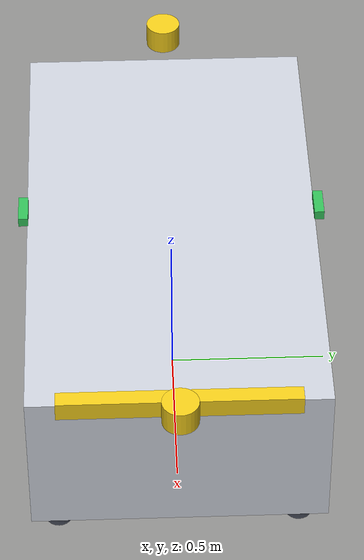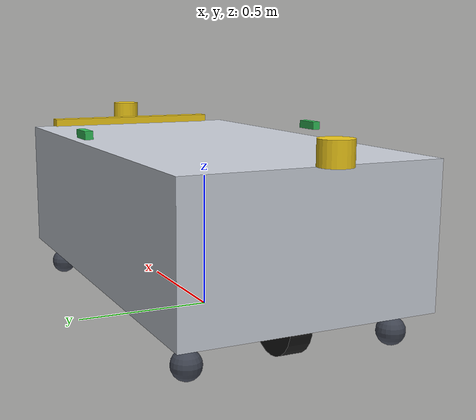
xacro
<?xml version="1.0"?>
<robot name="foil_a082" xmlns:xacro="http://www.ros.org/wiki/xacro">

  <xacro:arg name="ns" default=""/>
  <xacro:property name="NS" value="$(arg ns)"/>

  <xacro:arg name="show_scan" default="false"/>

  <xacro:arg name="segment" default=""/>
  <xacro:property name="SEGMENT" value="$(arg segment)"/>
  <xacro:property name="BODY_COLOUR" value="Gazebo/DarkGrey"/>
  <xacro:if value="${SEGMENT == 'A'}">
    <xacro:property name="BODY_COLOUR" value="Gazebo/Red"/>
  </xacro:if>
  <xacro:if value="${SEGMENT == 'B'}">
    <xacro:property name="BODY_COLOUR" value="Gazebo/Green"/>
  </xacro:if>
  <xacro:if value="${SEGMENT == 'C'}">
    <xacro:property name="BODY_COLOUR" value="Gazebo/Blue"/>
  </xacro:if>
  <xacro:property name="PFX" value="${NS + '/' if NS else ''}"/>

  <xacro:property name="TNS" value="${'/' + NS if NS else ''}"/>

  <!-- ===================== parameters ===================== -->
  <!-- Measured (robot_geometry_2ws.yaml) -->
  <xacro:property name="W1_X" value="0.6039"/>
  <xacro:property name="W1_Y" value="-0.0014"/>
  <xacro:property name="W2_X" value="-0.5961"/>
  <xacro:property name="W2_Y" value="-0.0014"/>
  <xacro:property name="WHEEL_R" value="0.125"/>
  <xacro:property name="WHEEL_W" value="0.080"/>
  <xacro:property name="STEER_LIMIT" value="2.0071286397934789"/>  <!-- +/-115 deg -->

  <!-- PLACEHOLDER - change here and the whole model follows -->
  <xacro:property name="BODY_L" value="1.600"/>
  <xacro:property name="BODY_W" value="0.900"/>
  <xacro:property name="BODY_H" value="0.500"/>
  <xacro:property name="BODY_Z" value="0.260"/>   <!-- chassis centre height above base_link -->
  <xacro:property name="MASS"   value="250.0"/>

  <xacro:property name="CASTER_R" value="0.050"/>
  <xacro:property name="CASTER_X" value="0.680"/>
  <xacro:property name="CASTER_Y" value="0.370"/>

  <xacro:property name="PI" value="3.14159265358979"/>
  <xacro:property name="PI2" value="1.5707963267948966"/>

  <material name="body_grey"><color rgba="0.80 0.82 0.86 1.0"/></material>
  <material name="body_dark"><color rgba="0.25 0.27 0.32 1.0"/></material>
  <material name="wheel_black"><color rgba="0.10 0.10 0.10 1.0"/></material>
  <material name="steer_blue"><color rgba="0.20 0.45 0.85 1.0"/></material>
  <material name="lidar_yellow"><color rgba="0.95 0.80 0.10 1.0"/></material>
  <material name="imu_green"><color rgba="0.20 0.75 0.35 1.0"/></material>

  <!-- ===================== macros ===================== -->

  <!-- One steer + drive module. Maps to two CANopen nodes on the real robot. -->
  <xacro:macro name="steer_drive_module" params="name x y">
    <!-- Steering link: rotates about z relative to base_link -->
    <link name="${name}_steer_link">
      <visual>
        <origin xyz="0 0 0.055"/>
        <geometry><cylinder radius="0.075" length="0.110"/></geometry>
        <material name="steer_blue"/>
      </visual>
      <collision>
        <origin xyz="0 0 0.055"/>
        <geometry><cylinder radius="0.075" length="0.110"/></geometry>
      </collision>
      <inertial>
        <origin xyz="0 0 0.055"/>
        <mass value="8.0"/>
        <inertia ixx="0.03" ixy="0" ixz="0" iyy="0.03" iyz="0" izz="0.02"/>
      </inertial>
    </link>

    <joint name="${name}_steer_joint" type="revolute">
      <parent link="base_link"/>
      <child  link="${name}_steer_link"/>
      <origin xyz="${x} ${y} 0" rpy="0 0 0"/>
      <axis xyz="0 0 1"/>
      <!-- +/-90 deg: same range the IK normalizes steering angles into -->
      <limit lower="${-STEER_LIMIT}" upper="${STEER_LIMIT}" effort="500.0" velocity="3.0"/>
      <dynamics damping="0.5" friction="0.1"/>
    </joint>

    <!-- Drive link: rotates about y relative to the steering link -->
    <link name="${name}_wheel_link">
      <visual>
        <origin rpy="${PI2} 0 0"/>
        <geometry><cylinder radius="${WHEEL_R}" length="${WHEEL_W}"/></geometry>
        <material name="wheel_black"/>
      </visual>
      <collision>
        <origin rpy="${PI2} 0 0"/>
        <geometry><cylinder radius="${WHEEL_R}" length="${WHEEL_W}"/></geometry>
      </collision>
      <inertial>
        <mass value="6.0"/>
        <inertia ixx="0.03" ixy="0" ixz="0" iyy="0.05" iyz="0" izz="0.03"/>
      </inertial>
    </link>

    <joint name="${name}_wheel_joint" type="continuous">
      <parent link="${name}_steer_link"/>
      <child  link="${name}_wheel_link"/>
      <origin xyz="0 0 0" rpy="0 0 0"/>
      <axis xyz="0 1 0"/>
      <limit effort="500.0" velocity="50.0"/>
      <dynamics damping="0.05" friction="0.05"/>
    </joint>

    <gazebo reference="${name}_wheel_link">
      <mu1>1.2</mu1>
      <mu2>1.2</mu2>
      <kp>1e6</kp>
      <kd>100.0</kd>
      <minDepth>0.001</minDepth>
      <material>Gazebo/Black</material>
    </gazebo>
    <gazebo reference="${name}_steer_link">
      <material>Gazebo/Blue</material>
    </gazebo>
  </xacro:macro>

  <!-- Passive spherical caster: keeps the inline 2-wheel robot from tipping sideways -->
  <xacro:macro name="caster" params="name x y">
    <link name="${name}_caster_link">
      <visual>
        <geometry><sphere radius="${CASTER_R}"/></geometry>
        <material name="body_dark"/>
      </visual>
      <collision>
        <geometry><sphere radius="${CASTER_R}"/></geometry>
      </collision>
      <inertial>
        <mass value="1.0"/>
        <inertia ixx="0.001" ixy="0" ixz="0" iyy="0.001" iyz="0" izz="0.001"/>
      </inertial>
    </link>
    <joint name="${name}_caster_joint" type="fixed">
      <parent link="base_link"/>
      <child  link="${name}_caster_link"/>
      <origin xyz="${x} ${y} ${CASTER_R - WHEEL_R}"/>
    </joint>
    <gazebo reference="${name}_caster_link">
      <!-- Near-frictionless so casters do not fight the driven wheels -->
      <mu1>0.0</mu1>
      <mu2>0.0</mu2>
      <kp>1e6</kp>
      <kd>100.0</kd>
      <minDepth>0.001</minDepth>
      <material>Gazebo/DarkGrey</material>
    </gazebo>
  </xacro:macro>

  <!-- ===================== chassis ===================== -->

  <link name="base_footprint"/>

  <joint name="base_joint" type="fixed">
    <parent link="base_footprint"/>
    <child  link="base_link"/>
    <origin xyz="0 0 ${WHEEL_R}" rpy="0 0 0"/>
  </joint>

  <link name="base_link">
    <visual>
      <origin xyz="0 0 ${BODY_Z}"/>
      <geometry><box size="${BODY_L} ${BODY_W} ${BODY_H}"/></geometry>
      <material name="body_grey"/>
    </visual>
    <collision>
      <origin xyz="0 0 ${BODY_Z}"/>
      <geometry><box size="${BODY_L} ${BODY_W} ${BODY_H}"/></geometry>
    </collision>
    <inertial>
      <origin xyz="0 0 ${BODY_Z}"/>
      <mass value="${MASS}"/>
      <inertia
        ixx="${MASS*(BODY_W*BODY_W + BODY_H*BODY_H)/12.0}" ixy="0" ixz="0"
        iyy="${MASS*(BODY_L*BODY_L + BODY_H*BODY_H)/12.0}" iyz="0"
        izz="${MASS*(BODY_L*BODY_L + BODY_W*BODY_W)/12.0}"/>
    </inertial>
  </link>
  <gazebo reference="base_link"><material>${BODY_COLOUR}</material></gazebo>

  <!-- Yellow bar marking the front, so heading is obvious in the GUI -->
  <link name="front_marker_link">
    <visual>
      <geometry><box size="0.05 ${BODY_W*0.8} 0.06"/></geometry>
      <material name="lidar_yellow"/>
    </visual>
  </link>
  <joint name="front_marker_joint" type="fixed">
    <parent link="base_link"/>
    <child  link="front_marker_link"/>
    <origin xyz="${BODY_L/2.0} 0 ${BODY_Z + BODY_H/2.0}"/>
  </joint>
  <gazebo reference="front_marker_link"><material>Gazebo/Yellow</material></gazebo>

  <!-- ===================== drive modules (W1 front / W2 rear) ===================== -->
  <xacro:steer_drive_module name="w1" x="${W1_X}" y="${W1_Y}"/>
  <xacro:steer_drive_module name="w2" x="${W2_X}" y="${W2_Y}"/>

  <!-- ===================== four casters ===================== -->
  <xacro:caster name="fl" x="${CASTER_X}"  y="${CASTER_Y}"/>
  <xacro:caster name="fr" x="${CASTER_X}"  y="${-CASTER_Y}"/>
  <xacro:caster name="rl" x="${-CASTER_X}" y="${CASTER_Y}"/>
  <xacro:caster name="rr" x="${-CASTER_X}" y="${-CASTER_Y}"/>

  <!-- ===================== sensors ===================== -->
  <!-- Two SICK 2D safety scanners (front / rear). Mount coordinates are
       PLACEHOLDER. On the real robot seer_lidar_tf fetches the TF from the
       Seer controller over TCP API 1009. -->
  <link name="scan_front_link">
    <visual>
      <geometry><cylinder radius="0.055" length="0.080"/></geometry>
      <material name="lidar_yellow"/>
    </visual>
    <inertial><mass value="0.5"/><inertia ixx="0.001" ixy="0" ixz="0" iyy="0.001" iyz="0" izz="0.001"/></inertial>
  </link>
  <joint name="scan_front_joint" type="fixed">
    <parent link="base_link"/>
    <child  link="scan_front_link"/>
    <origin xyz="${BODY_L/2.0 + 0.08} 0 ${BODY_Z + BODY_H/2.0 + 0.05}" rpy="0 0 0"/>
  </joint>
  <gazebo reference="scan_front_link"><material>Gazebo/Yellow</material></gazebo>

  <link name="scan_rear_link">
    <visual>
      <geometry><cylinder radius="0.055" length="0.080"/></geometry>
      <material name="lidar_yellow"/>
    </visual>
    <inertial><mass value="0.5"/><inertia ixx="0.001" ixy="0" ixz="0" iyy="0.001" iyz="0" izz="0.001"/></inertial>
  </link>
  <joint name="scan_rear_joint" type="fixed">
    <parent link="base_link"/>
    <child  link="scan_rear_link"/>
    <origin xyz="${-BODY_L/2.0 - 0.08} 0 ${BODY_Z + BODY_H/2.0 + 0.05}" rpy="0 0 ${PI}"/>
  </joint>
  <gazebo reference="scan_rear_link"><material>Gazebo/Yellow</material></gazebo>

  <!-- iAHRS IMU. (-0.37, 0, 0.29) is the TR-AMR value carried over in debt-002;
       Big-AMR's real mount point has not been measured yet. -->
  <link name="imu_link">
    <visual>
      <geometry><box size="0.05 0.05 0.02"/></geometry>
      <material name="imu_green"/>
    </visual>
    <inertial><mass value="0.05"/><inertia ixx="1e-5" ixy="0" ixz="0" iyy="1e-5" iyz="0" izz="1e-5"/></inertial>
  </link>
  <joint name="imu_joint" type="fixed">
    <parent link="base_link"/>
    <child  link="imu_link"/>
    <origin xyz="-0.37 0 0.29" rpy="0 0 0"/>
  </joint>
  <gazebo reference="imu_link"><material>Gazebo/Green</material></gazebo>

  <!-- ===================== Gazebo sensor plugins ===================== -->
  <gazebo reference="scan_front_link">
    <sensor type="ray" name="scan_front_sensor">
      <pose>0 0 0 0 0 0</pose>
      <visualize>$(arg show_scan)</visualize>
      <update_rate>25.0</update_rate>
      <ray>
        <scan>
          <horizontal>
            <!-- SICK safety scanner class: 275 deg field of view -->
            <samples>400</samples>
            <resolution>1</resolution>
            <min_angle>-1.745</min_angle>
            <max_angle>1.745</max_angle>
          </horizontal>
        </scan>
        <range><min>0.05</min><max>25.0</max><resolution>0.01</resolution></range>
        <noise><type>gaussian</type><mean>0.0</mean><stddev>0.01</stddev></noise>
      </ray>
      <plugin name="${NS + '_' if NS else ''}scan_front_plugin" filename="libgazebo_ros_ray_sensor.so">
        <ros>
          <namespace>/${NS}</namespace>
          <remapping>~/out:=${TNS}/scan_front</remapping>
        </ros>
        <output_type>sensor_msgs/LaserScan</output_type>
        <frame_name>scan_front_link</frame_name>
      </plugin>
    </sensor>
  </gazebo>

  <gazebo reference="scan_rear_link">
    <sensor type="ray" name="scan_rear_sensor">
      <pose>0 0 0 0 0 0</pose>
      <visualize>$(arg show_scan)</visualize>
      <update_rate>25.0</update_rate>
      <ray>
        <scan>
          <horizontal>
            <samples>400</samples>
            <resolution>1</resolution>
            <min_angle>-1.745</min_angle>
            <max_angle>1.745</max_angle>
          </horizontal>
        </scan>
        <range><min>0.05</min><max>25.0</max><resolution>0.01</resolution></range>
        <noise><type>gaussian</type><mean>0.0</mean><stddev>0.01</stddev></noise>
      </ray>
      <plugin name="${NS + '_' if NS else ''}scan_rear_plugin" filename="libgazebo_ros_ray_sensor.so">
        <ros>
          <namespace>/${NS}</namespace>
          <remapping>~/out:=${TNS}/scan_rear</remapping>
        </ros>
        <output_type>sensor_msgs/LaserScan</output_type>
        <frame_name>scan_rear_link</frame_name>
      </plugin>
    </sensor>
  </gazebo>

  <gazebo reference="imu_link">
    <sensor name="imu_sensor" type="imu">
      <always_on>true</always_on>
      <!-- Same topic the real iahrs_driver publishes on -->
      <update_rate>100</update_rate>
      <plugin name="${NS + '_' if NS else ''}imu_plugin" filename="libgazebo_ros_imu_sensor.so">
        <ros>
          <namespace>/${NS}</namespace>
          <remapping>~/out:=${TNS}/imu/data</remapping>
        </ros>
        <frame_name>imu_link</frame_name>
        <initial_orientation_as_reference>false</initial_orientation_as_reference>
      </plugin>
    </sensor>
  </gazebo>

  <gazebo>
    <plugin name="${NS + '_' if NS else ''}ground_truth" filename="libgazebo_ros_p3d.so">
      <ros>
        <namespace>/${NS}</namespace>
        <remapping>odom:=${TNS}/odom_truth</remapping>
      </ros>
      <frame_name>world</frame_name>
      <body_name>base_footprint</body_name>
      <update_rate>30.0</update_rate>
      <gaussian_noise>0.0</gaussian_noise>
    </plugin>
  </gazebo>

  <!-- ===================== docking cameras ===================== -->
  <xacro:property name="CAM_Y" value="0.46"/>
  <xacro:property name="CAM_Z" value="0.55"/>

  <xacro:macro name="dock_camera" params="side y yaw">
    <link name="cam_${side}_link">
      <visual>
        <geometry><box size="0.03 0.10 0.03"/></geometry>
        <material name="imu_green"/>
      </visual>
      <inertial><mass value="0.1"/><inertia ixx="1e-4" ixy="0" ixz="0" iyy="1e-4" iyz="0" izz="1e-4"/></inertial>
    </link>
    <joint name="cam_${side}_joint" type="fixed">
      <parent link="base_link"/>
      <child  link="cam_${side}_link"/>
      <origin xyz="0 ${y} ${CAM_Z}" rpy="0 0 ${yaw}"/>
    </joint>
    <gazebo reference="cam_${side}_link">
      <sensor type="camera" name="dock_cam_${side}">
        <update_rate>15.0</update_rate>
        <visualize>false</visualize>
        <camera>
          <horizontal_fov>1.204</horizontal_fov>
          <image><width>640</width><height>480</height><format>R8G8B8</format></image>
          <clip><near>0.05</near><far>30.0</far></clip>
        </camera>
        <plugin name="${NS + '_' if NS else ''}dock_cam_${side}" filename="libgazebo_ros_camera.so">
          <ros>
            <namespace>/${NS}</namespace>
            <remapping>dock_camera_${side}/image_raw:=${TNS}/dock_camera_${side}/image_raw</remapping>
            <remapping>dock_camera_${side}/camera_info:=${TNS}/dock_camera_${side}/camera_info</remapping>
          </ros>
          <camera_name>dock_camera_${side}</camera_name>
          <frame_name>${NS + '_' if NS else ''}cam_${side}_link</frame_name>
        </plugin>
      </sensor>
    </gazebo>
  </xacro:macro>

  <xacro:dock_camera side="left"  y="${CAM_Y}"  yaw="${PI2}"/>
  <xacro:dock_camera side="right" y="${-CAM_Y}" yaw="${-PI2}"/>

  <!-- ===================== ros2_control ===================== -->
  <!-- Stands in for the real CANopen SDO layer:
       steering = position control, drive = velocity control -->
  <ros2_control name="GazeboSystem" type="system">
    <hardware>
      <plugin>gazebo_ros2_control/GazeboSystem</plugin>
    </hardware>

    <joint name="w1_steer_joint">
      <command_interface name="position">
        <param name="min">${-STEER_LIMIT}</param>
        <param name="max">${STEER_LIMIT}</param>
      </command_interface>
      <state_interface name="position"/>
      <state_interface name="velocity"/>
    </joint>

    <joint name="w2_steer_joint">
      <command_interface name="position">
        <param name="min">${-STEER_LIMIT}</param>
        <param name="max">${STEER_LIMIT}</param>
      </command_interface>
      <state_interface name="position"/>
      <state_interface name="velocity"/>
    </joint>

    <joint name="w1_wheel_joint">
      <command_interface name="velocity">
        <param name="min">-50.0</param>
        <param name="max">50.0</param>
      </command_interface>
      <state_interface name="position"/>
      <state_interface name="velocity"/>
    </joint>

    <joint name="w2_wheel_joint">
      <command_interface name="velocity">
        <param name="min">-50.0</param>
        <param name="max">50.0</param>
      </command_interface>
      <state_interface name="position"/>
      <state_interface name="velocity"/>
    </joint>
  </ros2_control>

  <gazebo>
    <plugin name="${NS + '_' if NS else ''}gazebo_ros2_control" filename="libgazebo_ros2_control.so">
      <parameters>$(find trnav_2ws_gazebo)/config/controllers.yaml</parameters>
      <ros>
        <namespace>/${NS}</namespace>
      </ros>
    </plugin>
  </gazebo>

</robot>
